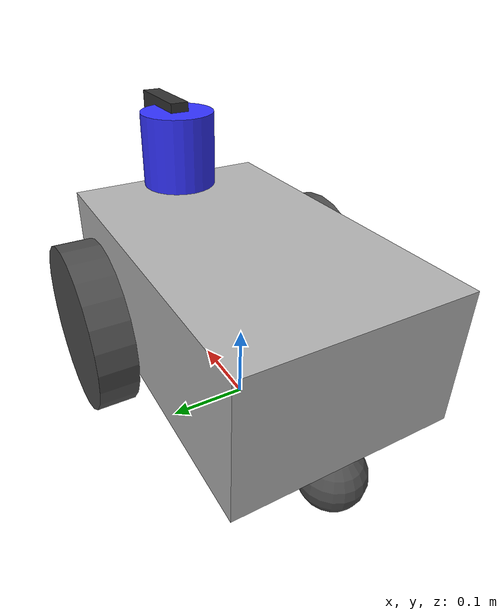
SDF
<?xml version="1.0" ?>
<sdf version="1.5">
  <model name="pioneer2dx">
    <link name="chassis">
      <pose>0 0 0.16 0 0 0</pose>
      <inertial>
        <mass>5.67</mass>
        <inertia>
          <ixx>0.07</ixx>
          <iyy>0.08</iyy>
          <izz>0.10</izz>
          <ixy>0</ixy>
          <ixz>0</ixz>
          <iyz>0</iyz>
        </inertia>
      </inertial>
      <collision name="collision">
        <geometry>
          <box>
            <size>0.445 0.277 0.17</size>
          </box>
        </geometry>
      </collision>
      <collision name="castor_collision">
        <pose>-0.200 0 -0.12 0 0 0</pose>
        <geometry>
          <sphere>
            <radius>0.04</radius>
          </sphere>
        </geometry>
        <surface>
          <friction>
            <ode>
              <mu>0</mu>
              <mu2>0</mu2>
              <slip1>1.0</slip1>
              <slip2>1.0</slip2>
            </ode>
          </friction>
        </surface>
      </collision>
      <!-- 简化的视觉元素 - 使用基本几何体代替mesh -->
      <visual name="visual">
        <pose>0 0 0 0 0 0</pose>
        <geometry>
          <box>
            <size>0.445 0.277 0.17</size>
          </box>
        </geometry>
        <material>
          <ambient>0.5 0.5 0.5 1</ambient>
          <diffuse>0.7 0.7 0.7 1</diffuse>
          <specular>0.1 0.1 0.1 1</specular>
        </material>
      </visual>
      <visual name="castor_visual">
        <pose>-0.200 0 -0.12 0 0 0</pose>
        <geometry>
          <sphere>
            <radius>0.04</radius>
          </sphere>
        </geometry>
        <material>
          <ambient>0.2 0.2 0.2 1</ambient>
          <diffuse>0.3 0.3 0.3 1</diffuse>
          <specular>0.1 0.1 0.1 1</specular>
        </material>
      </visual>
    </link>

    <link name="right_wheel">
      <pose>0.1 -.17 0.11 0 1.5707 1.5707</pose>
      <inertial>
        <mass>1.5</mass>
        <inertia>
          <ixx>0.0051</ixx>
          <iyy>0.0051</iyy>
          <izz>0.0090</izz>
          <ixy>0</ixy>
          <ixz>0</ixz>
          <iyz>0</iyz>
        </inertia>
      </inertial>
      <collision name="collision">
        <geometry>
          <cylinder>
            <radius>0.11</radius>
            <length>0.05</length>
          </cylinder>
        </geometry>
        <surface>
          <friction>
            <ode>
              <mu>100000.0</mu>
              <mu2>100000.0</mu2>
              <slip1>0.0</slip1>
              <slip2>0.0</slip2>
            </ode>
          </friction>
        </surface>
      </collision>
      <visual name="visual">
        <geometry>
          <cylinder>
            <radius>0.11</radius>
            <length>0.05</length>
          </cylinder>
        </geometry>
        <material>
          <ambient>0.2 0.2 0.2 1</ambient>
          <diffuse>0.3 0.3 0.3 1</diffuse>
          <specular>0.1 0.1 0.1 1</specular>
        </material>
      </visual>
    </link>

    <link name="left_wheel">
      <pose>0.1 .17 0.11 0 1.5707 1.5707</pose>
      <inertial>
        <mass>1.5</mass>
        <inertia>
          <ixx>0.0051</ixx>
          <iyy>0.0051</iyy>
          <izz>0.0090</izz>
          <ixy>0</ixy>
          <ixz>0</ixz>
          <iyz>0</iyz>
        </inertia>
      </inertial>
      <collision name="collision">
        <geometry>
          <cylinder>
            <radius>0.11</radius>
            <length>0.05</length>
          </cylinder>
        </geometry>
        <surface>
          <friction>
            <ode>
              <mu>100000.0</mu>
              <mu2>100000.0</mu2>
              <slip1>0.0</slip1>
              <slip2>0.0</slip2>
            </ode>
          </friction>
        </surface>
      </collision>
      <visual name="visual">
        <geometry>
          <cylinder>
            <radius>0.11</radius>
            <length>0.05</length>
          </cylinder>
        </geometry>
        <material>
          <ambient>0.2 0.2 0.2 1</ambient>
          <diffuse>0.3 0.3 0.3 1</diffuse>
          <specular>0.1 0.1 0.1 1</specular>
        </material>
      </visual>
    </link>

    <!-- 3D激光雷达链接 -->
    <link name="lidar_link">
      <pose>0.18 0 0.3 0 0 0</pose>
      <inertial>
        <mass>0.1</mass>
        <inertia>
          <ixx>0.000166667</ixx>
          <iyy>0.000166667</iyy>
          <izz>0.000166667</izz>
          <ixy>0</ixy>
          <ixz>0</ixz>
          <iyz>0</iyz>
        </inertia>
      </inertial>
      <collision name="collision">
        <geometry>
          <cylinder>
            <radius>0.05</radius>
            <length>0.1</length>
          </cylinder>
        </geometry>
      </collision>
      <visual name="visual">
        <geometry>
          <cylinder>
            <radius>0.05</radius>
            <length>0.1</length>
          </cylinder>
        </geometry>
        <material>
          <ambient>0.1 0.1 0.8 1</ambient>
          <diffuse>0.2 0.2 1.0 1</diffuse>
          <specular>0.8 0.8 0.8 1</specular>
        </material>
      </visual>
      <!-- 3D激光雷达传感器 -->
      <sensor name="lidar" type="ray">
        <pose>0 0 0 0 0 0</pose>
        <update_rate>10</update_rate>
        <visualize>true</visualize>
        <ray>
          <scan>
            <horizontal>
              <samples>360</samples>
              <resolution>1</resolution>
              <min_angle>-3.14159</min_angle>
              <max_angle>3.14159</max_angle>
            </horizontal>
            <vertical>
              <samples>16</samples>
              <resolution>1</resolution>
              <min_angle>-0.523599</min_angle>
              <max_angle>0.523599</max_angle>
            </vertical>
          </scan>
          <range>
            <min>0.1</min>
            <max>30.0</max>
            <resolution>0.01</resolution>
          </range>
          <noise>
            <type>gaussian</type>
            <mean>0.0</mean>
            <stddev>0.01</stddev>
          </noise>
        </ray>
        <plugin name="gazebo_ros_lidar" filename="libgazebo_ros_ray_sensor.so">
          <ros>
            <namespace></namespace>
            <remapping>~/out:=scan</remapping>
          </ros>
          <output_type>sensor_msgs/PointCloud2</output_type>
          <frame_name>chassis</frame_name>
        </plugin>
      </sensor>
    </link>

    <!-- 2D激光雷达链接 -->
    <link name="laser_link">
      <pose>0.18 0 0.27 0 0 0</pose>
      <inertial>
        <mass>0.08</mass>
        <inertia>
          <ixx>0.000133333</ixx>
          <iyy>0.000133333</iyy>
          <izz>0.000133333</izz>
          <ixy>0</ixy>
          <ixz>0</ixz>
          <iyz>0</iyz>
        </inertia>
      </inertial>
      <collision name="collision">
        <geometry>
          <cylinder>
            <radius>0.03</radius>
            <length>0.06</length>
          </cylinder>
        </geometry>
      </collision>
      <visual name="visual">
        <geometry>
          <cylinder>
            <radius>0.03</radius>
            <length>0.06</length>
          </cylinder>
        </geometry>
        <material>
          <ambient>0.8 0.1 0.1 1</ambient>
          <diffuse>1.0 0.2 0.2 1</diffuse>
          <specular>0.8 0.8 0.8 1</specular>
        </material>
      </visual>
      <!-- 2D激光雷达传感器 -->
      <sensor name="laser" type="ray">
        <pose>0 0 0 0 0 0</pose>
        <update_rate>20</update_rate>
        <visualize>true</visualize>
        <ray>
          <scan>
            <horizontal>
              <samples>360</samples>
              <resolution>1</resolution>
              <min_angle>-3.14159</min_angle>
              <max_angle>3.14159</max_angle>
            </horizontal>
          </scan>
          <range>
            <min>0.1</min>
            <max>12.0</max>
            <resolution>0.01</resolution>
          </range>
          <noise>
            <type>gaussian</type>
            <mean>0.0</mean>
            <stddev>0.005</stddev>
          </noise>
        </ray>
        <plugin name="gazebo_ros_laser" filename="libgazebo_ros_ray_sensor.so">
          <ros>
            <namespace></namespace>
            <remapping>~/out:=scan_2d</remapping>
          </ros>
          <output_type>sensor_msgs/LaserScan</output_type>
          <frame_name>chassis</frame_name>
        </plugin>
      </sensor>
    </link>

    <!-- RGB-D相机链接 (类似D435i) -->
    <link name="camera_link">
      <pose>0.22 0 0.35 0 0 0</pose>
      <inertial>
        <mass>0.072</mass>
        <inertia>
          <ixx>0.000024</ixx>
          <iyy>0.000024</iyy>
          <izz>0.000024</izz>
          <ixy>0</ixy>
          <ixz>0</ixz>
          <iyz>0</iyz>
        </inertia>
      </inertial>
      <collision name="collision">
        <geometry>
          <box>
            <size>0.1 0.025 0.025</size>
          </box>
        </geometry>
      </collision>
      <visual name="visual">
        <geometry>
          <box>
            <size>0.1 0.025 0.025</size>
          </box>
        </geometry>
        <material>
          <ambient>0.1 0.1 0.1 1</ambient>
          <diffuse>0.2 0.2 0.2 1</diffuse>
          <specular>0.3 0.3 0.3 1</specular>
        </material>
      </visual>

      <!-- RGB相机传感器 -->
      <sensor name="rgb_camera" type="camera">
        <pose>0 0 0 0 0 0</pose>
        <update_rate>30</update_rate>
        <visualize>true</visualize>
        <camera>
          <horizontal_fov>1.047</horizontal_fov>
          <image>
            <width>640</width>
            <height>480</height>
            <format>R8G8B8</format>
          </image>
          <clip>
            <near>0.1</near>
            <far>10</far>
          </clip>
          <noise>
            <type>gaussian</type>
            <mean>0</mean>
            <stddev>0.007</stddev>
          </noise>
        </camera>
        <plugin name="gazebo_ros_camera" filename="libgazebo_ros_camera.so">
          <ros>
            <namespace></namespace>
            <remapping>~/image_raw:=camera/rgb/image_raw</remapping>
            <remapping>~/camera_info:=camera/rgb/camera_info</remapping>
          </ros>
          <camera_name>rgb_camera</camera_name>
          <frame_name>camera_link</frame_name>
          <hack_baseline>0.07</hack_baseline>
        </plugin>
      </sensor>

      <!-- 深度相机传感器 -->
      <sensor name="depth_camera" type="depth">
        <pose>0 0 0 0 0 0</pose>
        <update_rate>30</update_rate>
        <visualize>true</visualize>
        <camera>
          <horizontal_fov>1.047</horizontal_fov>
          <image>
            <width>640</width>
            <height>480</height>
            <format>R_FLOAT32</format>
          </image>
          <clip>
            <near>0.1</near>
            <far>10</far>
          </clip>
          <noise>
            <type>gaussian</type>
            <mean>0</mean>
            <stddev>0.01</stddev>
          </noise>
        </camera>
        <plugin name="gazebo_ros_depth_camera" filename="libgazebo_ros_camera.so">
          <ros>
            <namespace></namespace>
            <remapping>~/image_raw:=camera/depth/image_raw</remapping>
            <remapping>~/camera_info:=camera/depth/camera_info</remapping>
            <remapping>~/points:=camera/depth/points</remapping>
          </ros>
          <camera_name>depth_camera</camera_name>
          <frame_name>camera_link</frame_name>
          <hack_baseline>0.07</hack_baseline>
        </plugin>
      </sensor>
    </link>

    <joint type="revolute" name="left_wheel_hinge">
      <pose>0 0 -0.03 0 0 0</pose>
      <child>left_wheel</child>
      <parent>chassis</parent>
      <axis>
        <xyz>0 1 0</xyz>
        <use_parent_model_frame>true</use_parent_model_frame>
      </axis>
    </joint>

    <joint type="revolute" name="right_wheel_hinge">
      <pose>0 0 0.03 0 0 0</pose>
      <child>right_wheel</child>
      <parent>chassis</parent>
      <axis>
        <xyz>0 1 0</xyz>
        <use_parent_model_frame>true</use_parent_model_frame>
      </axis>
    </joint>

    <!-- 激光雷达关节 -->
    <joint name="lidar_joint" type="fixed">
      <child>lidar_link</child>
      <parent>chassis</parent>
    </joint>

    <!-- 2D激光雷达关节 -->
    <joint name="laser_joint" type="fixed">
      <child>laser_link</child>
      <parent>chassis</parent>
    </joint>

    <!-- RGB-D相机关节 -->
    <joint name="camera_joint" type="fixed">
      <child>camera_link</child>
      <parent>chassis</parent>
    </joint>

    <!-- 差速驱动插件 -->
    <plugin filename="libgazebo_ros_diff_drive.so" name="differential_drive_controller">
      <ros>
        <namespace>/uagentsim</namespace>
      </ros>
      <update_rate>50</update_rate>
      <left_joint>left_wheel_hinge</left_joint>
      <right_joint>right_wheel_hinge</right_joint>
      <wheel_separation>0.34</wheel_separation>
      <wheel_diameter>0.22</wheel_diameter>
      <max_wheel_torque>20</max_wheel_torque>
      <max_wheel_acceleration>1.0</max_wheel_acceleration>
      <command_topic>cmd_vel</command_topic>
      <publish_odom>true</publish_odom>
      <publish_odom_tf>true</publish_odom_tf>
      <publish_wheel_tf>true</publish_wheel_tf>
      <odometry_topic>odom</odometry_topic>
      <odometry_frame>odom</odometry_frame>
      <robot_base_frame>chassis</robot_base_frame>
    </plugin>
  </model>
</sdf>
